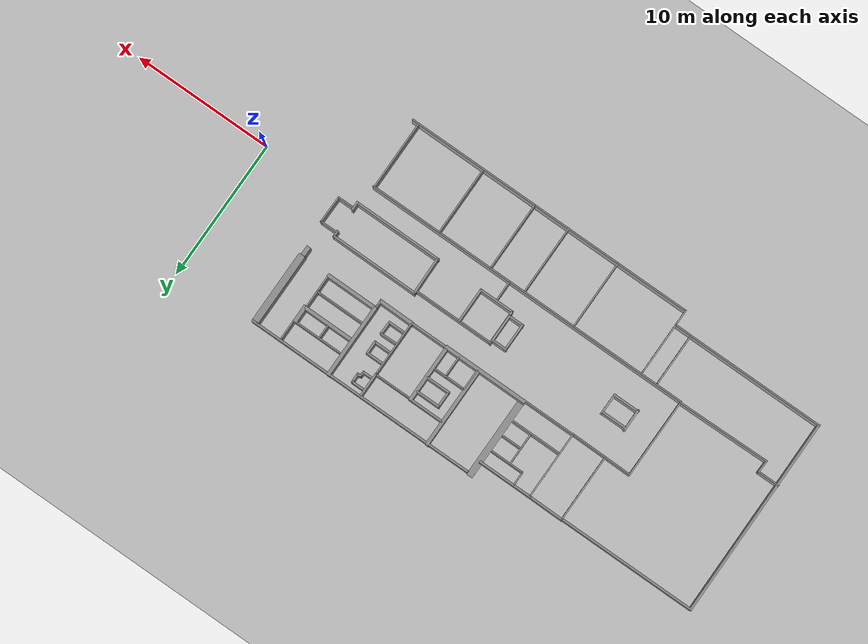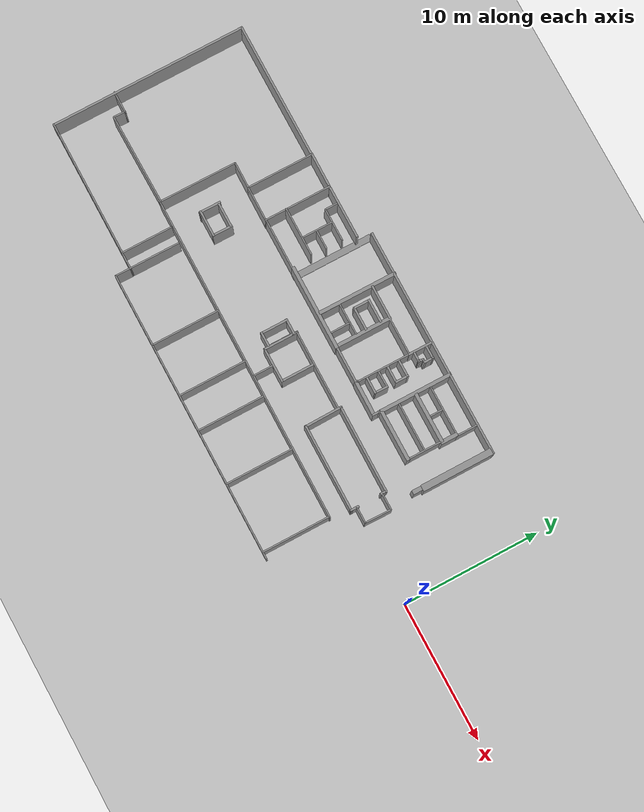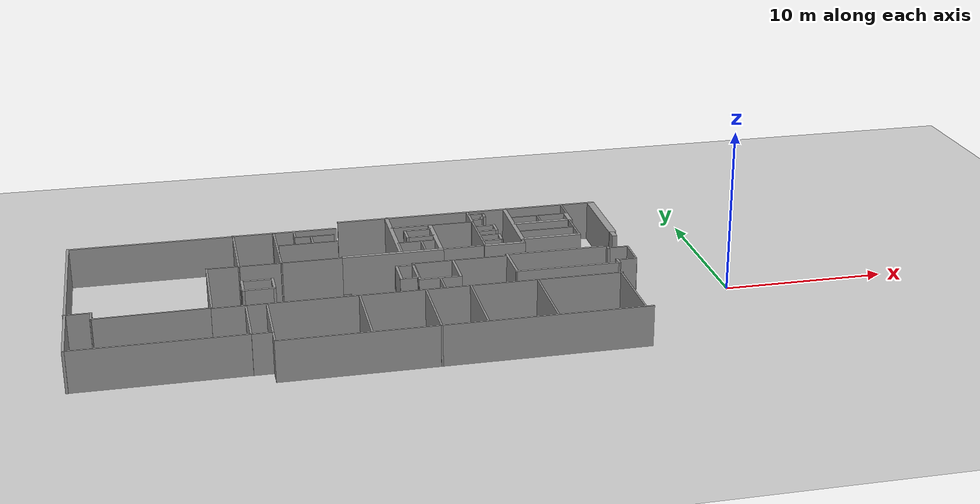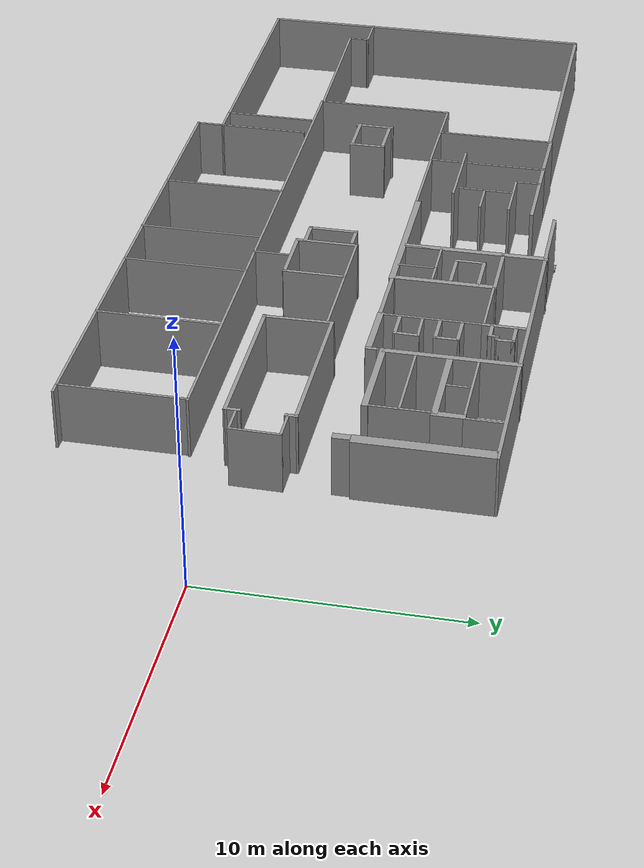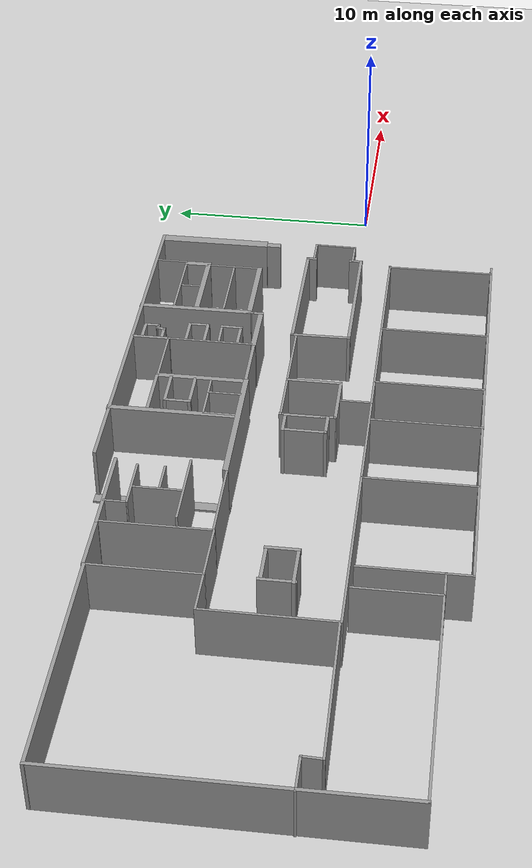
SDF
<sdf version="1.7">
 <world name="default">
  <model name="ground_plane">
   <static>1</static>
   <link name="link">
    <collision name="collision">
     <geometry><plane><normal>0 0 1</normal><size>100 100</size></plane></geometry>
     <surface>
      <contact><collide_bitmask>65535</collide_bitmask></contact>
      <friction><ode><mu>100</mu><mu2>50</mu2></ode></friction>
     </surface>
    </collision>
    <visual name="visual">
     <cast_shadows>0</cast_shadows>
     <geometry><plane><normal>0 0 1</normal><size>100 100</size></plane></geometry>
     <material>
      <script><uri>file://media/materials/scripts/gazebo.material</uri><name>Gazebo/Grey</name></script>
     </material>
    </visual>
   </link>
  </model>
  <model name="6OG">
   <pose>-19.646 1.54049 0 0 -0 0</pose>
   <link name="Wall_0">
    <collision name="Wall_0_Collision">
     <geometry><box><size>14.3933 0.15 2.5</size></box></geometry>
     <pose>0 0 1.25 0 -0 0</pose>
    </collision>
    <visual name="Wall_0_Visual">
     <pose>0 0 1.25 0 -0 0</pose>
     <geometry><box><size>14.3933 0.15 2.5</size></box></geometry>
     <material>
      <script><uri>file://media/materials/scripts/gazebo.material</uri><name>Gazebo/Grey</name></script>
      <ambient>1 1 1 1</ambient>
     </material>
     <meta><layer>0</layer></meta>
    </visual>
    <pose>-19.532 0.02801 0 0 -0 1.57248</pose>
   </link>
   <link name="Wall_101">
    <collision name="Wall_101_Collision">
     <geometry><box><size>16.78 0.15 2.5</size></box></geometry>
     <pose>0 0 1.25 0 -0 0</pose>
    </collision>
    <visual name="Wall_101_Visual">
     <pose>0 0 1.25 0 -0 0</pose>
     <geometry><box><size>16.78 0.15 2.5</size></box></geometry>
     <material>
      <script><uri>file://media/materials/scripts/gazebo.material</uri><name>Gazebo/Grey</name></script>
      <ambient>1 1 1 1</ambient>
     </material>
     <meta><layer>0</layer></meta>
    </visual>
    <pose>5.43225 8.13998 0 0 -0 0</pose>
   </link>
   <link name="Wall_103">
    <collision name="Wall_103_Collision">
     <geometry><box><size>1.499 0.101 2.5</size></box></geometry>
     <pose>0 0 1.25 0 -0 0</pose>
    </collision>
    <visual name="Wall_103_Visual">
     <pose>0 0 1.25 0 -0 0</pose>
     <geometry><box><size>1.499 0.101 2.5</size></box></geometry>
     <material>
      <script><uri>file://media/materials/scripts/gazebo.material</uri><name>Gazebo/Grey</name></script>
      <ambient>1 1 1 1</ambient>
     </material>
     <meta><layer>0</layer></meta>
    </visual>
    <pose>11.6267 7.34293 0 0 -0 -1.5708</pose>
   </link>
   <link name="Wall_105">
    <collision name="Wall_105_Collision">
     <geometry><box><size>5.298 0.25 2.5</size></box></geometry>
     <pose>0 0 1.25 0 -0 0</pose>
    </collision>
    <visual name="Wall_105_Visual">
     <pose>0 0 1.25 0 -0 0</pose>
     <geometry><box><size>5.298 0.25 2.5</size></box></geometry>
     <material>
      <script><uri>file://media/materials/scripts/gazebo.material</uri><name>Gazebo/Grey</name></script>
      <ambient>1 1 1 1</ambient>
     </material>
     <meta><layer>0</layer></meta>
    </visual>
    <pose>7.8518 5.58599 0 0 -0 -1.5708</pose>
   </link>
   <link name="Wall_107">
    <collision name="Wall_107_Collision">
     <geometry><box><size>3.499 0.101 2.5</size></box></geometry>
     <pose>0 0 1.25 0 -0 0</pose>
    </collision>
    <visual name="Wall_107_Visual">
     <pose>0 0 1.25 0 -0 0</pose>
     <geometry><box><size>3.499 0.101 2.5</size></box></geometry>
     <material>
      <script><uri>file://media/materials/scripts/gazebo.material</uri><name>Gazebo/Grey</name></script>
      <ambient>1 1 1 1</ambient>
     </material>
     <meta><layer>0</layer></meta>
    </visual>
    <pose>9.72876 4.26198 0 0 -0 0</pose>
   </link>
   <link name="Wall_109">
    <collision name="Wall_109_Collision">
     <geometry><box><size>3.649 0.25 2.5</size></box></geometry>
     <pose>0 0 1.25 0 -0 0</pose>
    </collision>
    <visual name="Wall_109_Visual">
     <pose>0 0 1.25 0 -0 0</pose>
     <geometry><box><size>3.649 0.25 2.5</size></box></geometry>
     <material>
      <script><uri>file://media/materials/scripts/gazebo.material</uri><name>Gazebo/Grey</name></script>
      <ambient>1 1 1 1</ambient>
     </material>
     <meta><layer>0</layer></meta>
    </visual>
    <pose>9.72899 5.54446 0 0 -0 0</pose>
   </link>
   <link name="Wall_11">
    <collision name="Wall_11_Collision">
     <geometry><box><size>3.69973 0.101 2.5</size></box></geometry>
     <pose>0 0 1.25 0 -0 0</pose>
    </collision>
    <visual name="Wall_11_Visual">
     <pose>0 0 1.25 0 -0 0</pose>
     <geometry><box><size>3.69973 0.101 2.5</size></box></geometry>
     <material>
      <script><uri>file://media/materials/scripts/gazebo.material</uri><name>Gazebo/Grey</name></script>
      <ambient>1 1 1 1</ambient>
     </material>
     <meta><layer>0</layer></meta>
    </visual>
    <pose>-9.6 -5.23449 0 0 -0 -1.5708</pose>
   </link>
   <link name="Wall_111">
    <collision name="Wall_111_Collision">
     <geometry><box><size>3.45 0.101 2.5</size></box></geometry>
     <pose>0 0 1.25 0 -0 0</pose>
    </collision>
    <visual name="Wall_111_Visual">
     <pose>0 0 1.25 0 -0 0</pose>
     <geometry><box><size>3.45 0.101 2.5</size></box></geometry>
     <material>
      <script><uri>file://media/materials/scripts/gazebo.material</uri><name>Gazebo/Grey</name></script>
      <ambient>1 1 1 1</ambient>
     </material>
     <meta><layer>0</layer></meta>
    </visual>
    <pose>9.68069 6.62743 0 0 -0 0</pose>
   </link>
   <link name="Wall_113">
    <collision name="Wall_113_Collision">
     <geometry><box><size>5.748 0.25 2.5</size></box></geometry>
     <pose>0 0 1.25 0 -0 0</pose>
    </collision>
    <visual name="Wall_113_Visual">
     <pose>0 0 1.25 0 -0 0</pose>
     <geometry><box><size>5.748 0.25 2.5</size></box></geometry>
     <material>
      <script><uri>file://media/materials/scripts/gazebo.material</uri><name>Gazebo/Grey</name></script>
      <ambient>1 1 1 1</ambient>
     </material>
     <meta><layer>0</layer></meta>
    </visual>
    <pose>0.173159 5.37915 0 0 -0 -1.5708</pose>
   </link>
   <link name="Wall_115">
    <collision name="Wall_115_Collision">
     <geometry><box><size>2.5 0.15 2.5</size></box></geometry>
     <pose>0 0 1.25 0 -0 0</pose>
    </collision>
    <visual name="Wall_115_Visual">
     <pose>0 0 1.25 0 -0 0</pose>
     <geometry><box><size>2.5 0.15 2.5</size></box></geometry>
     <material>
      <script><uri>file://media/materials/scripts/gazebo.material</uri><name>Gazebo/Grey</name></script>
      <ambient>1 1 1 1</ambient>
     </material>
     <meta><layer>0</layer></meta>
    </visual>
    <pose>1.43898 6.4647 0 0 -0 3.14159</pose>
   </link>
   <link name="Wall_119">
    <collision name="Wall_119_Collision">
     <geometry><box><size>3.862 0.101 2.5</size></box></geometry>
     <pose>0 0 1.25 0 -0 0</pose>
    </collision>
    <visual name="Wall_119_Visual">
     <pose>0 0 1.25 0 -0 0</pose>
     <geometry><box><size>3.862 0.101 2.5</size></box></geometry>
     <material>
      <script><uri>file://media/materials/scripts/gazebo.material</uri><name>Gazebo/Grey</name></script>
      <ambient>1 1 1 1</ambient>
     </material>
     <meta><layer>0</layer></meta>
    </visual>
    <pose>5.39162 4.44752 0 0 -0 -1.5708</pose>
   </link>
   <link name="Wall_121">
    <collision name="Wall_121_Collision">
     <geometry><box><size>2.749 0.101 2.5</size></box></geometry>
     <pose>0 0 1.25 0 -0 0</pose>
    </collision>
    <visual name="Wall_121_Visual">
     <pose>0 0 1.25 0 -0 0</pose>
     <geometry><box><size>2.749 0.101 2.5</size></box></geometry>
     <material>
      <script><uri>file://media/materials/scripts/gazebo.material</uri><name>Gazebo/Grey</name></script>
      <ambient>1 1 1 1</ambient>
     </material>
     <meta><layer>0</layer></meta>
    </visual>
    <pose>4.07012 6.4357 0 0 -0 3.14159</pose>
   </link>
   <link name="Wall_123">
    <collision name="Wall_123_Collision">
     <geometry><box><size>1.75 0.15 2.5</size></box></geometry>
     <pose>0 0 1.25 0 -0 0</pose>
    </collision>
    <visual name="Wall_123_Visual">
     <pose>0 0 1.25 0 -0 0</pose>
     <geometry><box><size>1.75 0.15 2.5</size></box></geometry>
     <material>
      <script><uri>file://media/materials/scripts/gazebo.material</uri><name>Gazebo/Grey</name></script>
      <ambient>1 1 1 1</ambient>
     </material>
     <meta><layer>0</layer></meta>
    </visual>
    <pose>5.39462 7.2357 0 0 -0 -1.5708</pose>
   </link>
   <link name="Wall_125">
    <collision name="Wall_125_Collision">
     <geometry><box><size>1.75 0.15 2.5</size></box></geometry>
     <pose>0 0 1.25 0 -0 0</pose>
    </collision>
    <visual name="Wall_125_Visual">
     <pose>0 0 1.25 0 -0 0</pose>
     <geometry><box><size>1.75 0.15 2.5</size></box></geometry>
     <material>
      <script><uri>file://media/materials/scripts/gazebo.material</uri><name>Gazebo/Grey</name></script>
      <ambient>1 1 1 1</ambient>
     </material>
     <meta><layer>0</layer></meta>
    </visual>
    <pose>1.7622 4.71178 0 0 -0 0</pose>
   </link>
   <link name="Wall_127">
    <collision name="Wall_127_Collision">
     <geometry><box><size>1.25 0.15 2.5</size></box></geometry>
     <pose>0 0 1.25 0 -0 0</pose>
    </collision>
    <visual name="Wall_127_Visual">
     <pose>0 0 1.25 0 -0 0</pose>
     <geometry><box><size>1.25 0.15 2.5</size></box></geometry>
     <material>
      <script><uri>file://media/materials/scripts/gazebo.material</uri><name>Gazebo/Grey</name></script>
      <ambient>1 1 1 1</ambient>
     </material>
     <meta><layer>0</layer></meta>
    </visual>
    <pose>0.962202 5.26178 0 0 -0 1.5708</pose>
   </link>
   <link name="Wall_128">
    <collision name="Wall_128_Collision">
     <geometry><box><size>1.75 0.15 2.5</size></box></geometry>
     <pose>0 0 1.25 0 -0 0</pose>
    </collision>
    <visual name="Wall_128_Visual">
     <pose>0 0 1.25 0 -0 0</pose>
     <geometry><box><size>1.75 0.15 2.5</size></box></geometry>
     <material>
      <script><uri>file://media/materials/scripts/gazebo.material</uri><name>Gazebo/Grey</name></script>
      <ambient>1 1 1 1</ambient>
     </material>
     <meta><layer>0</layer></meta>
    </visual>
    <pose>1.7622 5.81179 0 0 -0 0</pose>
   </link>
   <link name="Wall_13">
    <collision name="Wall_13_Collision">
     <geometry><box><size>9.9766 0.101 2.5</size></box></geometry>
     <pose>0 0 1.25 0 -0 0</pose>
    </collision>
    <visual name="Wall_13_Visual">
     <pose>0 0 1.25 0 -0 0</pose>
     <geometry><box><size>9.9766 0.101 2.5</size></box></geometry>
     <material>
      <script><uri>file://media/materials/scripts/gazebo.material</uri><name>Gazebo/Grey</name></script>
      <ambient>1 1 1 1</ambient>
     </material>
     <meta><layer>0</layer></meta>
    </visual>
    <pose>-14.5815 -7.09349 0 0 -0 0</pose>
   </link>
   <link name="Wall_130">
    <collision name="Wall_130_Collision">
     <geometry><box><size>1.25 0.15 2.5</size></box></geometry>
     <pose>0 0 1.25 0 -0 0</pose>
    </collision>
    <visual name="Wall_130_Visual">
     <pose>0 0 1.25 0 -0 0</pose>
     <geometry><box><size>1.25 0.15 2.5</size></box></geometry>
     <material>
      <script><uri>file://media/materials/scripts/gazebo.material</uri><name>Gazebo/Grey</name></script>
      <ambient>1 1 1 1</ambient>
     </material>
     <meta><layer>0</layer></meta>
    </visual>
    <pose>6.03678 3.22838 0 0 -0 0</pose>
   </link>
   <link name="Wall_131">
    <collision name="Wall_131_Collision">
     <geometry><box><size>1.02052 0.15 2.5</size></box></geometry>
     <pose>0 0 1.25 0 -0 0</pose>
    </collision>
    <visual name="Wall_131_Visual">
     <pose>0 0 1.25 0 -0 0</pose>
     <geometry><box><size>1.02052 0.15 2.5</size></box></geometry>
     <material>
      <script><uri>file://media/materials/scripts/gazebo.material</uri><name>Gazebo/Grey</name></script>
      <ambient>1 1 1 1</ambient>
     </material>
     <meta><layer>0</layer></meta>
    </visual>
    <pose>6.59714 3.66351 0 0 -0 1.54699</pose>
   </link>
   <link name="Wall_133">
    <collision name="Wall_133_Collision">
     <geometry><box><size>1.2207 0.12 2.5</size></box></geometry>
     <pose>0 0 1.25 0 -0 0</pose>
    </collision>
    <visual name="Wall_133_Visual">
     <pose>0 0 1.25 0 -0 0</pose>
     <geometry><box><size>1.2207 0.12 2.5</size></box></geometry>
     <material>
      <script><uri>file://media/materials/scripts/gazebo.material</uri><name>Gazebo/Grey</name></script>
      <ambient>1 1 1 1</ambient>
     </material>
     <meta><layer>0</layer></meta>
    </visual>
    <pose>6.05725 4.10886 0 0 -0 -3.12286</pose>
   </link>
   <link name="Wall_135">
    <collision name="Wall_135_Collision">
     <geometry><box><size>1.25 0.15 2.5</size></box></geometry>
     <pose>0 0 1.25 0 -0 0</pose>
    </collision>
    <visual name="Wall_135_Visual">
     <pose>0 0 1.25 0 -0 0</pose>
     <geometry><box><size>1.25 0.15 2.5</size></box></geometry>
     <material>
      <script><uri>file://media/materials/scripts/gazebo.material</uri><name>Gazebo/Grey</name></script>
      <ambient>1 1 1 1</ambient>
     </material>
     <meta><layer>0</layer></meta>
    </visual>
    <pose>6.06618 4.77835 0 0 -0 0</pose>
   </link>
   <link name="Wall_136">
    <collision name="Wall_136_Collision">
     <geometry><box><size>1 0.15 2.5</size></box></geometry>
     <pose>0 0 1.25 0 -0 0</pose>
    </collision>
    <visual name="Wall_136_Visual">
     <pose>0 0 1.25 0 -0 0</pose>
     <geometry><box><size>1 0.15 2.5</size></box></geometry>
     <material>
      <script><uri>file://media/materials/scripts/gazebo.material</uri><name>Gazebo/Grey</name></script>
      <ambient>1 1 1 1</ambient>
     </material>
     <meta><layer>0</layer></meta>
    </visual>
    <pose>6.61618 5.20335 0 0 -0 1.5708</pose>
   </link>
   <link name="Wall_137">
    <collision name="Wall_137_Collision">
     <geometry><box><size>1.25 0.15 2.5</size></box></geometry>
     <pose>0 0 1.25 0 -0 0</pose>
    </collision>
    <visual name="Wall_137_Visual">
     <pose>0 0 1.25 0 -0 0</pose>
     <geometry><box><size>1.25 0.15 2.5</size></box></geometry>
     <material>
      <script><uri>file://media/materials/scripts/gazebo.material</uri><name>Gazebo/Grey</name></script>
      <ambient>1 1 1 1</ambient>
     </material>
     <meta><layer>0</layer></meta>
    </visual>
    <pose>6.06618 5.62835 0 0 -0 3.14159</pose>
   </link>
   <link name="Wall_139">
    <collision name="Wall_139_Collision">
     <geometry><box><size>1 0.15 2.5</size></box></geometry>
     <pose>0 0 1.25 0 -0 0</pose>
    </collision>
    <visual name="Wall_139_Visual">
     <pose>0 0 1.25 0 -0 0</pose>
     <geometry><box><size>1 0.15 2.5</size></box></geometry>
     <material>
      <script><uri>file://media/materials/scripts/gazebo.material</uri><name>Gazebo/Grey</name></script>
      <ambient>1 1 1 1</ambient>
     </material>
     <meta><layer>0</layer></meta>
    </visual>
    <pose>5.91257 7.67733 0 0 -0 0</pose>
   </link>
   <link name="Wall_140">
    <collision name="Wall_140_Collision">
     <geometry><box><size>0.75 0.15 2.5</size></box></geometry>
     <pose>0 0 1.25 0 -0 0</pose>
    </collision>
    <visual name="Wall_140_Visual">
     <pose>0 0 1.25 0 -0 0</pose>
     <geometry><box><size>0.75 0.15 2.5</size></box></geometry>
     <material>
      <script><uri>file://media/materials/scripts/gazebo.material</uri><name>Gazebo/Grey</name></script>
      <ambient>1 1 1 1</ambient>
     </material>
     <meta><layer>0</layer></meta>
    </visual>
    <pose>6.33757 7.37733 0 0 -0 -1.5708</pose>
   </link>
   <link name="Wall_142">
    <collision name="Wall_142_Collision">
     <geometry><box><size>0.25 0.15 2.5</size></box></geometry>
     <pose>0 0 1.25 0 -0 0</pose>
    </collision>
    <visual name="Wall_142_Visual">
     <pose>0 0 1.25 0 -0 0</pose>
     <geometry><box><size>0.25 0.15 2.5</size></box></geometry>
     <material>
      <script><uri>file://media/materials/scripts/gazebo.material</uri><name>Gazebo/Grey</name></script>
      <ambient>1 1 1 1</ambient>
     </material>
     <meta><layer>0</layer></meta>
    </visual>
    <pose>6.28757 7.07733 0 0 -0 3.14159</pose>
   </link>
   <link name="Wall_143">
    <collision name="Wall_143_Collision">
     <geometry><box><size>0.25 0.15 2.5</size></box></geometry>
     <pose>0 0 1.25 0 -0 0</pose>
    </collision>
    <visual name="Wall_143_Visual">
     <pose>0 0 1.25 0 -0 0</pose>
     <geometry><box><size>0.25 0.15 2.5</size></box></geometry>
     <material>
      <script><uri>file://media/materials/scripts/gazebo.material</uri><name>Gazebo/Grey</name></script>
      <ambient>1 1 1 1</ambient>
     </material>
     <meta><layer>0</layer></meta>
    </visual>
    <pose>6.18927 7.06439 0 0 -0 -2.87979</pose>
   </link>
   <link name="Wall_144">
    <collision name="Wall_144_Collision">
     <geometry><box><size>0.15 0.15 2.5</size></box></geometry>
     <pose>0 0 1.25 0 -0 0</pose>
    </collision>
    <visual name="Wall_144_Visual">
     <pose>0 0 1.25 0 -0 0</pose>
     <geometry><box><size>0.15 0.15 2.5</size></box></geometry>
     <material>
      <script><uri>file://media/materials/scripts/gazebo.material</uri><name>Gazebo/Grey</name></script>
      <ambient>1 1 1 1</ambient>
     </material>
     <meta><layer>0</layer></meta>
    </visual>
    <pose>6.14097 7.05145 0 0 -0 0</pose>
   </link>
   <link name="Wall_145">
    <collision name="Wall_145_Collision">
     <geometry><box><size>0.440985 0.15 2.5</size></box></geometry>
     <pose>0 0 1.25 0 -0 0</pose>
    </collision>
    <visual name="Wall_145_Visual">
     <pose>0 0 1.25 0 -0 0</pose>
     <geometry><box><size>0.440985 0.15 2.5</size></box></geometry>
     <material>
      <script><uri>file://media/materials/scripts/gazebo.material</uri><name>Gazebo/Grey</name></script>
      <ambient>1 1 1 1</ambient>
     </material>
     <meta><layer>0</layer></meta>
    </visual>
    <pose>6.10758 6.90984 0 0 -0 -1.80236</pose>
   </link>
   <link name="Wall_146">
    <collision name="Wall_146_Collision">
     <geometry><box><size>0.75 0.15 2.5</size></box></geometry>
     <pose>0 0 1.25 0 -0 0</pose>
    </collision>
    <visual name="Wall_146_Visual">
     <pose>0 0 1.25 0 -0 0</pose>
     <geometry><box><size>0.75 0.15 2.5</size></box></geometry>
     <material>
      <script><uri>file://media/materials/scripts/gazebo.material</uri><name>Gazebo/Grey</name></script>
      <ambient>1 1 1 1</ambient>
     </material>
     <meta><layer>0</layer></meta>
    </visual>
    <pose>5.79779 6.76823 0 0 -0 3.14159</pose>
   </link>
   <link name="Wall_148">
    <collision name="Wall_148_Collision">
     <geometry><box><size>1.969 0.15 2.5</size></box></geometry>
     <pose>0 0 1.25 0 -0 0</pose>
    </collision>
    <visual name="Wall_148_Visual">
     <pose>0 0 1.25 0 -0 0</pose>
     <geometry><box><size>1.969 0.15 2.5</size></box></geometry>
     <material>
      <script><uri>file://media/materials/scripts/gazebo.material</uri><name>Gazebo/Grey</name></script>
      <ambient>1 1 1 1</ambient>
     </material>
     <meta><layer>0</layer></meta>
    </visual>
    <pose>-8.69935 -1.20703 0 0 -0 0</pose>
   </link>
   <link name="Wall_15">
    <collision name="Wall_15_Collision">
     <geometry><box><size>6.71908 0.101 2.5</size></box></geometry>
     <pose>0 0 1.25 0 -0 0</pose>
    </collision>
    <visual name="Wall_15_Visual">
     <pose>0 0 1.25 0 -0 0</pose>
     <geometry><box><size>6.71908 0.101 2.5</size></box></geometry>
     <material>
      <script><uri>file://media/materials/scripts/gazebo.material</uri><name>Gazebo/Grey</name></script>
      <ambient>1 1 1 1</ambient>
     </material>
     <meta><layer>0</layer></meta>
    </visual>
    <pose>-14.8005 -3.27071 0 0 -0 0.014134</pose>
   </link>
   <link name="Wall_150">
    <collision name="Wall_150_Collision">
     <geometry><box><size>1.5 0.15 2.5</size></box></geometry>
     <pose>0 0 1.25 0 -0 0</pose>
    </collision>
    <visual name="Wall_150_Visual">
     <pose>0 0 1.25 0 -0 0</pose>
     <geometry><box><size>1.5 0.15 2.5</size></box></geometry>
     <material>
      <script><uri>file://media/materials/scripts/gazebo.material</uri><name>Gazebo/Grey</name></script>
      <ambient>1 1 1 1</ambient>
     </material>
     <meta><layer>0</layer></meta>
    </visual>
    <pose>-7.78346 -0.541704 0 0 -0 -1.5708</pose>
   </link>
   <link name="Wall_152">
    <collision name="Wall_152_Collision">
     <geometry><box><size>1.75 0.15 2.5</size></box></geometry>
     <pose>0 0 1.25 0 -0 0</pose>
    </collision>
    <visual name="Wall_152_Visual">
     <pose>0 0 1.25 0 -0 0</pose>
     <geometry><box><size>1.75 0.15 2.5</size></box></geometry>
     <material>
      <script><uri>file://media/materials/scripts/gazebo.material</uri><name>Gazebo/Grey</name></script>
      <ambient>1 1 1 1</ambient>
     </material>
     <meta><layer>0</layer></meta>
    </visual>
    <pose>-8.66902 0.111824 0 0 -0 3.14159</pose>
   </link>
   <link name="Wall_154">
    <collision name="Wall_154_Collision">
     <geometry><box><size>1.603 0.15 2.5</size></box></geometry>
     <pose>0 0 1.25 0 -0 0</pose>
    </collision>
    <visual name="Wall_154_Visual">
     <pose>0 0 1.25 0 -0 0</pose>
     <geometry><box><size>1.603 0.15 2.5</size></box></geometry>
     <material>
      <script><uri>file://media/materials/scripts/gazebo.material</uri><name>Gazebo/Grey</name></script>
      <ambient>1 1 1 1</ambient>
     </material>
     <meta><layer>0</layer></meta>
    </visual>
    <pose>-9.57798 -0.538337 0 0 -0 1.5708</pose>
   </link>
   <link name="Wall_158">
    <collision name="Wall_158_Collision">
     <geometry><box><size>2 0.15 2.5</size></box></geometry>
     <pose>0 0 1.25 0 -0 0</pose>
    </collision>
    <visual name="Wall_158_Visual">
     <pose>0 0 1.25 0 -0 0</pose>
     <geometry><box><size>2 0.15 2.5</size></box></geometry>
     <material>
      <script><uri>file://media/materials/scripts/gazebo.material</uri><name>Gazebo/Grey</name></script>
      <ambient>1 1 1 1</ambient>
     </material>
     <meta><layer>0</layer></meta>
    </visual>
    <pose>-0.439043 -0.537365 0 0 -0 -1.5708</pose>
   </link>
   <link name="Wall_162">
    <collision name="Wall_162_Collision">
     <geometry><box><size>1.161 0.15 2.5</size></box></geometry>
     <pose>0 0 1.25 0 -0 0</pose>
    </collision>
    <visual name="Wall_162_Visual">
     <pose>0 0 1.25 0 -0 0</pose>
     <geometry><box><size>1.161 0.15 2.5</size></box></geometry>
     <material>
      <script><uri>file://media/materials/scripts/gazebo.material</uri><name>Gazebo/Grey</name></script>
      <ambient>1 1 1 1</ambient>
     </material>
     <meta><layer>0</layer></meta>
    </visual>
    <pose>0.050798 0.386694 0 0 -0 3.14159</pose>
   </link>
   <link name="Wall_164">
    <collision name="Wall_164_Collision">
     <geometry><box><size>1.161 0.15 2.5</size></box></geometry>
     <pose>0 0 1.25 0 -0 0</pose>
    </collision>
    <visual name="Wall_164_Visual">
     <pose>0 0 1.25 0 -0 0</pose>
     <geometry><box><size>1.161 0.15 2.5</size></box></geometry>
     <material>
      <script><uri>file://media/materials/scripts/gazebo.material</uri><name>Gazebo/Grey</name></script>
      <ambient>1 1 1 1</ambient>
     </material>
     <meta><layer>0</layer></meta>
    </visual>
    <pose>0.05674 -1.47984 0 0 -0 0</pose>
   </link>
   <link name="Wall_166">
    <collision name="Wall_166_Collision">
     <geometry><box><size>2.01655 0.15 2.5</size></box></geometry>
     <pose>0 0 1.25 0 -0 0</pose>
    </collision>
    <visual name="Wall_166_Visual">
     <pose>0 0 1.25 0 -0 0</pose>
     <geometry><box><size>2.01655 0.15 2.5</size></box></geometry>
     <material>
      <script><uri>file://media/materials/scripts/gazebo.material</uri><name>Gazebo/Grey</name></script>
      <ambient>1 1 1 1</ambient>
     </material>
     <meta><layer>0</layer></meta>
    </visual>
    <pose>0.559269 -0.546575 0 0 -0 -1.56761</pose>
   </link>
   <link name="Wall_168">
    <collision name="Wall_168_Collision">
     <geometry><box><size>2.5 0.15 2.5</size></box></geometry>
     <pose>0 0 1.25 0 -0 0</pose>
    </collision>
    <visual name="Wall_168_Visual">
     <pose>0 0 1.25 0 -0 0</pose>
     <geometry><box><size>2.5 0.15 2.5</size></box></geometry>
     <material>
      <script><uri>file://media/materials/scripts/gazebo.material</uri><name>Gazebo/Grey</name></script>
      <ambient>1 1 1 1</ambient>
     </material>
     <meta><layer>0</layer></meta>
    </visual>
    <pose>0.592194 -0.572936 0 0 -0 -1.5708</pose>
   </link>
   <link name="Wall_17">
    <collision name="Wall_17_Collision">
     <geometry><box><size>0.933614 0.101 2.5</size></box></geometry>
     <pose>0 0 1.25 0 -0 0</pose>
    </collision>
    <visual name="Wall_17_Visual">
     <pose>0 0 1.25 0 -0 0</pose>
     <geometry><box><size>0.933614 0.101 2.5</size></box></geometry>
     <material>
      <script><uri>file://media/materials/scripts/gazebo.material</uri><name>Gazebo/Grey</name></script>
      <ambient>1 1 1 1</ambient>
     </material>
     <meta><layer>0</layer></meta>
    </visual>
    <pose>-18.094 -2.90099 0 0 -0 -1.60919</pose>
   </link>
   <link name="Wall_170">
    <collision name="Wall_170_Collision">
     <geometry><box><size>2.55 0.15 2.5</size></box></geometry>
     <pose>0 0 1.25 0 -0 0</pose>
    </collision>
    <visual name="Wall_170_Visual">
     <pose>0 0 1.25 0 -0 0</pose>
     <geometry><box><size>2.55 0.15 2.5</size></box></geometry>
     <material>
      <script><uri>file://media/materials/scripts/gazebo.material</uri><name>Gazebo/Grey</name></script>
      <ambient>1 1 1 1</ambient>
     </material>
     <meta><layer>0</layer></meta>
    </visual>
    <pose>1.80652 -1.8029 0 0 -0 3.14159</pose>
   </link>
   <link name="Wall_172">
    <collision name="Wall_172_Collision">
     <geometry><box><size>5.783 0.101 2.5</size></box></geometry>
     <pose>0 0 1.25 0 -0 0</pose>
    </collision>
    <visual name="Wall_172_Visual">
     <pose>0 0 1.25 0 -0 0</pose>
     <geometry><box><size>5.783 0.101 2.5</size></box></geometry>
     <material>
      <script><uri>file://media/materials/scripts/gazebo.material</uri><name>Gazebo/Grey</name></script>
      <ambient>1 1 1 1</ambient>
     </material>
     <meta><layer>0</layer></meta>
    </visual>
    <pose>3.4155 0.59951 0 0 -0 0</pose>
   </link>
   <link name="Wall_174">
    <collision name="Wall_174_Collision">
     <geometry><box><size>2.5 0.15 2.5</size></box></geometry>
     <pose>0 0 1.25 0 -0 0</pose>
    </collision>
    <visual name="Wall_174_Visual">
     <pose>0 0 1.25 0 -0 0</pose>
     <geometry><box><size>2.5 0.15 2.5</size></box></geometry>
     <material>
      <script><uri>file://media/materials/scripts/gazebo.material</uri><name>Gazebo/Grey</name></script>
      <ambient>1 1 1 1</ambient>
     </material>
     <meta><layer>0</layer></meta>
    </visual>
    <pose>3.00862 -0.606322 0 0 -0 -1.5708</pose>
   </link>
   <link name="Wall_176">
    <collision name="Wall_176_Collision">
     <geometry><box><size>1.45029 0.101 2.5</size></box></geometry>
     <pose>0 0 1.25 0 -0 0</pose>
    </collision>
    <visual name="Wall_176_Visual">
     <pose>0 0 1.25 0 -0 0</pose>
     <geometry><box><size>1.45029 0.101 2.5</size></box></geometry>
     <material>
      <script><uri>file://media/materials/scripts/gazebo.material</uri><name>Gazebo/Grey</name></script>
      <ambient>1 1 1 1</ambient>
     </material>
     <meta><layer>0</layer></meta>
    </visual>
    <pose>1.813 -2.58949 0 0 -0 -1.5708</pose>
   </link>
   <link name="Wall_180">
    <collision name="Wall_180_Collision">
     <geometry><box><size>6.416 0.15 2.5</size></box></geometry>
     <pose>0 0 1.25 0 -0 0</pose>
    </collision>
    <visual name="Wall_180_Visual">
     <pose>0 0 1.25 0 -0 0</pose>
     <geometry><box><size>6.416 0.15 2.5</size></box></geometry>
     <material>
      <script><uri>file://media/materials/scripts/gazebo.material</uri><name>Gazebo/Grey</name></script>
      <ambient>1 1 1 1</ambient>
     </material>
     <meta><layer>0</layer></meta>
    </visual>
    <pose>9.50086 0.772969 0 0 -0 -0.003695</pose>
   </link>
   <link name="Wall_182">
    <collision name="Wall_182_Collision">
     <geometry><box><size>0.5 0.15 2.5</size></box></geometry>
     <pose>0 0 1.25 0 -0 0</pose>
    </collision>
    <visual name="Wall_182_Visual">
     <pose>0 0 1.25 0 -0 0</pose>
     <geometry><box><size>0.5 0.15 2.5</size></box></geometry>
     <material>
      <script><uri>file://media/materials/scripts/gazebo.material</uri><name>Gazebo/Grey</name></script>
      <ambient>1 1 1 1</ambient>
     </material>
     <meta><layer>0</layer></meta>
    </visual>
    <pose>12.6338 0.586392 0 0 -0 -1.5708</pose>
   </link>
   <link name="Wall_184">
    <collision name="Wall_184_Collision">
     <geometry><box><size>2.777 0.15 2.5</size></box></geometry>
     <pose>0 0 1.25 0 -0 0</pose>
    </collision>
    <visual name="Wall_184_Visual">
     <pose>0 0 1.25 0 -0 0</pose>
     <geometry><box><size>2.777 0.15 2.5</size></box></geometry>
     <material>
      <script><uri>file://media/materials/scripts/gazebo.material</uri><name>Gazebo/Grey</name></script>
      <ambient>1 1 1 1</ambient>
     </material>
     <meta><layer>0</layer></meta>
    </visual>
    <pose>6.38715 -0.518446 0 0 -0 1.58642</pose>
   </link>
   <link name="Wall_186">
    <collision name="Wall_186_Collision">
     <geometry><box><size>6.41685 0.15 2.5</size></box></geometry>
     <pose>0 0 1.25 0 -0 0</pose>
    </collision>
    <visual name="Wall_186_Visual">
     <pose>0 0 1.25 0 -0 0</pose>
     <geometry><box><size>6.41685 0.15 2.5</size></box></geometry>
     <material>
      <script><uri>file://media/materials/scripts/gazebo.material</uri><name>Gazebo/Grey</name></script>
      <ambient>1 1 1 1</ambient>
     </material>
     <meta><layer>0</layer></meta>
    </visual>
    <pose>9.52058 -1.83422 0 0 -0 3.14087</pose>
   </link>
   <link name="Wall_19">
    <collision name="Wall_19_Collision">
     <geometry><box><size>1.618 0.101 2.5</size></box></geometry>
     <pose>0 0 1.25 0 -0 0</pose>
    </collision>
    <visual name="Wall_19_Visual">
     <pose>0 0 1.25 0 -0 0</pose>
     <geometry><box><size>1.618 0.101 2.5</size></box></geometry>
     <material>
      <script><uri>file://media/materials/scripts/gazebo.material</uri><name>Gazebo/Grey</name></script>
      <ambient>1 1 1 1</ambient>
     </material>
     <meta><layer>0</layer></meta>
    </visual>
    <pose>-18.837 -2.48449 0 0 -0 3.14159</pose>
   </link>
   <link name="Wall_190">
    <collision name="Wall_190_Collision">
     <geometry><box><size>0.65 0.15 2.5</size></box></geometry>
     <pose>0 0 1.25 0 -0 0</pose>
    </collision>
    <visual name="Wall_190_Visual">
     <pose>0 0 1.25 0 -0 0</pose>
     <geometry><box><size>0.65 0.15 2.5</size></box></geometry>
     <material>
      <script><uri>file://media/materials/scripts/gazebo.material</uri><name>Gazebo/Grey</name></script>
      <ambient>1 1 1 1</ambient>
     </material>
     <meta><layer>0</layer></meta>
    </visual>
    <pose>12.654 -1.58649 0 0 -0 -1.5708</pose>
   </link>
   <link name="Wall_196">
    <collision name="Wall_196_Collision">
     <geometry><box><size>1.23569 0.101 2.5</size></box></geometry>
     <pose>0 0 1.25 0 -0 0</pose>
    </collision>
    <visual name="Wall_196_Visual">
     <pose>0 0 1.25 0 -0 0</pose>
     <geometry><box><size>1.23569 0.101 2.5</size></box></geometry>
     <material>
      <script><uri>file://media/materials/scripts/gazebo.material</uri><name>Gazebo/Grey</name></script>
      <ambient>1 1 1 1</ambient>
     </material>
     <meta><layer>0</layer></meta>
    </visual>
    <pose>13.2608 0.46751 0 0 -0 0</pose>
   </link>
   <link name="Wall_2">
    <collision name="Wall_2_Collision">
     <geometry><box><size>10.0948 0.15 2.5</size></box></geometry>
     <pose>0 0 1.25 0 -0 0</pose>
    </collision>
    <visual name="Wall_2_Visual">
     <pose>0 0 1.25 0 -0 0</pose>
     <geometry><box><size>10.0948 0.15 2.5</size></box></geometry>
     <material>
      <script><uri>file://media/materials/scripts/gazebo.material</uri><name>Gazebo/Grey</name></script>
      <ambient>1 1 1 1</ambient>
     </material>
     <meta><layer>0</layer></meta>
    </visual>
    <pose>-14.5715 7.14951 0 0 -0 3.14159</pose>
   </link>
   <link name="Wall_201">
    <collision name="Wall_201_Collision">
     <geometry><box><size>1.23569 0.101 2.5</size></box></geometry>
     <pose>0 0 1.25 0 -0 0</pose>
    </collision>
    <visual name="Wall_201_Visual">
     <pose>0 0 1.25 0 -0 0</pose>
     <geometry><box><size>1.23569 0.101 2.5</size></box></geometry>
     <material>
      <script><uri>file://media/materials/scripts/gazebo.material</uri><name>Gazebo/Grey</name></script>
      <ambient>1 1 1 1</ambient>
     </material>
     <meta><layer>0</layer></meta>
    </visual>
    <pose>13.2288 -1.42749 0 0 -0 0</pose>
   </link>
   <link name="Wall_203">
    <collision name="Wall_203_Collision">
     <geometry><box><size>1.99527 0.101 2.5</size></box></geometry>
     <pose>0 0 1.25 0 -0 0</pose>
    </collision>
    <visual name="Wall_203_Visual">
     <pose>0 0 1.25 0 -0 0</pose>
     <geometry><box><size>1.99527 0.101 2.5</size></box></geometry>
     <material>
      <script><uri>file://media/materials/scripts/gazebo.material</uri><name>Gazebo/Grey</name></script>
      <ambient>1 1 1 1</ambient>
     </material>
     <meta><layer>0</layer></meta>
    </visual>
    <pose>13.8305 -0.47999 0 0 -0 -1.58768</pose>
   </link>
   <link name="Wall_209">
    <collision name="Wall_209_Collision">
     <geometry><box><size>0.665 0.31 2.5</size></box></geometry>
     <pose>0 0 1.25 0 -0 0</pose>
    </collision>
    <visual name="Wall_209_Visual">
     <pose>0 0 1.25 0 -0 0</pose>
     <geometry><box><size>0.665 0.31 2.5</size></box></geometry>
     <material>
      <script><uri>file://media/materials/scripts/gazebo.material</uri><name>Gazebo/Grey</name></script>
      <ambient>1 1 1 1</ambient>
     </material>
     <meta><layer>0</layer></meta>
    </visual>
    <pose>13.5491 2.57417 0 0 -0 -1.5708</pose>
   </link>
   <link name="Wall_21">
    <collision name="Wall_21_Collision">
     <geometry><box><size>2.64714 0.15 2.5</size></box></geometry>
     <pose>0 0 1.25 0 -0 0</pose>
    </collision>
    <visual name="Wall_21_Visual">
     <pose>0 0 1.25 0 -0 0</pose>
     <geometry><box><size>2.64714 0.15 2.5</size></box></geometry>
     <material>
      <script><uri>file://media/materials/scripts/gazebo.material</uri><name>Gazebo/Grey</name></script>
      <ambient>1 1 1 1</ambient>
     </material>
     <meta><layer>0</layer></meta>
    </visual>
    <pose>-8.32148 7.17541 0 0 -0 3.1327</pose>
   </link>
   <link name="Wall_23">
    <collision name="Wall_23_Collision">
     <geometry><box><size>2.61265 0.101 2.5</size></box></geometry>
     <pose>0 0 1.25 0 -0 0</pose>
    </collision>
    <visual name="Wall_23_Visual">
     <pose>0 0 1.25 0 -0 0</pose>
     <geometry><box><size>2.61265 0.101 2.5</size></box></geometry>
     <material>
      <script><uri>file://media/materials/scripts/gazebo.material</uri><name>Gazebo/Grey</name></script>
      <ambient>1 1 1 1</ambient>
     </material>
     <meta><layer>0</layer></meta>
    </visual>
    <pose>-8.3155 2.34601 0 0 -0 -0.008356</pose>
   </link>
   <link name="Wall_24">
    <collision name="Wall_24_Collision">
     <geometry><box><size>4.92939 0.101 2.5</size></box></geometry>
     <pose>0 0 1.25 0 -0 0</pose>
    </collision>
    <visual name="Wall_24_Visual">
     <pose>0 0 1.25 0 -0 0</pose>
     <geometry><box><size>4.92939 0.101 2.5</size></box></geometry>
     <material>
      <script><uri>file://media/materials/scripts/gazebo.material</uri><name>Gazebo/Grey</name></script>
      <ambient>1 1 1 1</ambient>
     </material>
     <meta><layer>0</layer></meta>
    </visual>
    <pose>-7.06598 4.74991 0 0 -0 1.57369</pose>
   </link>
   <link name="Wall_26">
    <collision name="Wall_26_Collision">
     <geometry><box><size>1.22133 0.101 2.5</size></box></geometry>
     <pose>0 0 1.25 0 -0 0</pose>
    </collision>
    <visual name="Wall_26_Visual">
     <pose>0 0 1.25 0 -0 0</pose>
     <geometry><box><size>1.22133 0.101 2.5</size></box></geometry>
     <material>
      <script><uri>file://media/materials/scripts/gazebo.material</uri><name>Gazebo/Grey</name></script>
      <ambient>1 1 1 1</ambient>
     </material>
     <meta><layer>0</layer></meta>
    </visual>
    <pose>-8.9775 -7.10549 0 0 -0 0</pose>
   </link>
   <link name="Wall_27">
    <collision name="Wall_27_Collision">
     <geometry><box><size>3.7 0.101 2.5</size></box></geometry>
     <pose>0 0 1.25 0 -0 0</pose>
    </collision>
    <visual name="Wall_27_Visual">
     <pose>0 0 1.25 0 -0 0</pose>
     <geometry><box><size>3.7 0.101 2.5</size></box></geometry>
     <material>
      <script><uri>file://media/materials/scripts/gazebo.material</uri><name>Gazebo/Grey</name></script>
      <ambient>1 1 1 1</ambient>
     </material>
     <meta><layer>0</layer></meta>
    </visual>
    <pose>-8.417 -5.30549 0 0 -0 1.5708</pose>
   </link>
   <link name="Wall_31">
    <collision name="Wall_31_Collision">
     <geometry><box><size>23.999 0.101 2.5</size></box></geometry>
     <pose>0 0 1.25 0 -0 0</pose>
    </collision>
    <visual name="Wall_31_Visual">
     <pose>0 0 1.25 0 -0 0</pose>
     <geometry><box><size>23.999 0.101 2.5</size></box></geometry>
     <material>
      <script><uri>file://media/materials/scripts/gazebo.material</uri><name>Gazebo/Grey</name></script>
      <ambient>1 1 1 1</ambient>
     </material>
     <meta><layer>0</layer></meta>
    </visual>
    <pose>0.4585 -3.28671 0 0 -0 0</pose>
   </link>
   <link name="Wall_33">
    <collision name="Wall_33_Collision">
     <geometry><box><size>1.196 0.101 2.5</size></box></geometry>
     <pose>0 0 1.25 0 -0 0</pose>
    </collision>
    <visual name="Wall_33_Visual">
     <pose>0 0 1.25 0 -0 0</pose>
     <geometry><box><size>1.196 0.101 2.5</size></box></geometry>
     <material>
      <script><uri>file://media/materials/scripts/gazebo.material</uri><name>Gazebo/Grey</name></script>
      <ambient>1 1 1 1</ambient>
     </material>
     <meta><layer>0</layer></meta>
    </visual>
    <pose>-8.418 -7.65349 0 0 -0 1.56897</pose>
   </link>
   <link name="Wall_35">
    <collision name="Wall_35_Collision">
     <geometry><box><size>21.305 0.101 2.5</size></box></geometry>
     <pose>0 0 1.25 0 -0 0</pose>
    </collision>
    <visual name="Wall_35_Visual">
     <pose>0 0 1.25 0 -0 0</pose>
     <geometry><box><size>21.305 0.101 2.5</size></box></geometry>
     <material>
      <script><uri>file://media/materials/scripts/gazebo.material</uri><name>Gazebo/Grey</name></script>
      <ambient>1 1 1 1</ambient>
     </material>
     <meta><layer>0</layer></meta>
    </visual>
    <pose>2.1835 -8.20149 0 0 -0 3.14159</pose>
   </link>
   <link name="Wall_39">
    <collision name="Wall_39_Collision">
     <geometry><box><size>4.94992 0.101 2.5</size></box></geometry>
     <pose>0 0 1.25 0 -0 0</pose>
    </collision>
    <visual name="Wall_39_Visual">
     <pose>0 0 1.25 0 -0 0</pose>
     <geometry><box><size>4.94992 0.101 2.5</size></box></geometry>
     <material>
      <script><uri>file://media/materials/scripts/gazebo.material</uri><name>Gazebo/Grey</name></script>
      <ambient>1 1 1 1</ambient>
     </material>
     <meta><layer>0</layer></meta>
    </visual>
    <pose>-3.152 -5.74749 0 0 -0 -1.5708</pose>
   </link>
   <link name="Wall_41">
    <collision name="Wall_41_Collision">
     <geometry><box><size>4.94996 0.101 2.5</size></box></geometry>
     <pose>0 0 1.25 0 -0 0</pose>
    </collision>
    <visual name="Wall_41_Visual">
     <pose>0 0 1.25 0 -0 0</pose>
     <geometry><box><size>4.94996 0.101 2.5</size></box></geometry>
     <material>
      <script><uri>file://media/materials/scripts/gazebo.material</uri><name>Gazebo/Grey</name></script>
      <ambient>1 1 1 1</ambient>
     </material>
     <meta><layer>0</layer></meta>
    </visual>
    <pose>0.679001 -5.78849 0 0 -0 -1.5708</pose>
   </link>
   <link name="Wall_43">
    <collision name="Wall_43_Collision">
     <geometry><box><size>4.94992 0.101 2.5</size></box></geometry>
     <pose>0 0 1.25 0 -0 0</pose>
    </collision>
    <visual name="Wall_43_Visual">
     <pose>0 0 1.25 0 -0 0</pose>
     <geometry><box><size>4.94992 0.101 2.5</size></box></geometry>
     <material>
      <script><uri>file://media/materials/scripts/gazebo.material</uri><name>Gazebo/Grey</name></script>
      <ambient>1 1 1 1</ambient>
     </material>
     <meta><layer>0</layer></meta>
    </visual>
    <pose>3.313 -5.74749 0 0 -0 -1.5708</pose>
   </link>
   <link name="Wall_45">
    <collision name="Wall_45_Collision">
     <geometry><box><size>4.95044 0.101 2.5</size></box></geometry>
     <pose>0 0 1.25 0 -0 0</pose>
    </collision>
    <visual name="Wall_45_Visual">
     <pose>0 0 1.25 0 -0 0</pose>
     <geometry><box><size>4.95044 0.101 2.5</size></box></geometry>
     <material>
      <script><uri>file://media/materials/scripts/gazebo.material</uri><name>Gazebo/Grey</name></script>
      <ambient>1 1 1 1</ambient>
     </material>
     <meta><layer>0</layer></meta>
    </visual>
    <pose>7.294 -5.76749 0 0 -0 -1.5708</pose>
   </link>
   <link name="Wall_47">
    <collision name="Wall_47_Collision">
     <geometry><box><size>4.999 0.101 2.5</size></box></geometry>
     <pose>0 0 1.25 0 -0 0</pose>
    </collision>
    <visual name="Wall_47_Visual">
     <pose>0 0 1.25 0 -0 0</pose>
     <geometry><box><size>4.999 0.101 2.5</size></box></geometry>
     <material>
      <script><uri>file://media/materials/scripts/gazebo.material</uri><name>Gazebo/Grey</name></script>
      <ambient>1 1 1 1</ambient>
     </material>
     <meta><layer>0</layer></meta>
    </visual>
    <pose>12.3432 -5.75043 0 0 -0 -1.5708</pose>
   </link>
   <link name="Wall_49">
    <collision name="Wall_49_Collision">
     <geometry><box><size>3.749 0.101 2.5</size></box></geometry>
     <pose>0 0 1.25 0 -0 0</pose>
    </collision>
    <visual name="Wall_49_Visual">
     <pose>0 0 1.25 0 -0 0</pose>
     <geometry><box><size>3.749 0.101 2.5</size></box></geometry>
     <material>
      <script><uri>file://media/materials/scripts/gazebo.material</uri><name>Gazebo/Grey</name></script>
      <ambient>1 1 1 1</ambient>
     </material>
     <meta><layer>0</layer></meta>
    </visual>
    <pose>-5.2625 2.36251 0 0 -0 3.14159</pose>
   </link>
   <link name="Wall_5">
    <collision name="Wall_5_Collision">
     <geometry><box><size>4.92982 0.101 2.5</size></box></geometry>
     <pose>0 0 1.25 0 -0 0</pose>
    </collision>
    <visual name="Wall_5_Visual">
     <pose>0 0 1.25 0 -0 0</pose>
     <geometry><box><size>4.92982 0.101 2.5</size></box></geometry>
     <material>
      <script><uri>file://media/materials/scripts/gazebo.material</uri><name>Gazebo/Grey</name></script>
      <ambient>1 1 1 1</ambient>
     </material>
     <meta><layer>0</layer></meta>
    </visual>
    <pose>-9.571 4.77151 0 0 -0 1.57038</pose>
   </link>
   <link name="Wall_51">
    <collision name="Wall_51_Collision">
     <geometry><box><size>3.561 0.101 3</size></box></geometry>
     <pose>0 0 1.5 0 -0 0</pose>
    </collision>
    <visual name="Wall_51_Visual">
     <pose>0 0 1.5 0 -0 0</pose>
     <geometry><box><size>3.561 0.101 3</size></box></geometry>
     <material>
      <script><uri>file://media/materials/scripts/gazebo.material</uri><name>Gazebo/Grey</name></script>
      <ambient>1 1 1 1</ambient>
     </material>
     <meta><layer>0</layer></meta>
    </visual>
    <pose>-5.2515 3.86051 0 0 -0 3.14159</pose>
   </link>
   <link name="Wall_53">
    <collision name="Wall_53_Collision">
     <geometry><box><size>4 0.15 2.5</size></box></geometry>
     <pose>0 0 1.25 0 -0 0</pose>
    </collision>
    <visual name="Wall_53_Visual">
     <pose>0 0 1.25 0 -0 0</pose>
     <geometry><box><size>4 0.15 2.5</size></box></geometry>
     <material>
      <script><uri>file://media/materials/scripts/gazebo.material</uri><name>Gazebo/Grey</name></script>
      <ambient>1 1 1 1</ambient>
     </material>
     <meta><layer>0</layer></meta>
    </visual>
    <pose>-5.16848 7.16431 0 0 -0 3.14159</pose>
   </link>
   <link name="Wall_55">
    <collision name="Wall_55_Collision">
     <geometry><box><size>5.975 0.47 0.101</size></box></geometry>
     <pose>0 0 0.0505 0 -0 0</pose>
    </collision>
    <visual name="Wall_55_Visual">
     <pose>0 0 0.0505 0 -0 0</pose>
     <geometry><box><size>5.975 0.47 0.101</size></box></geometry>
     <material>
      <script><uri>file://media/materials/scripts/gazebo.material</uri><name>Gazebo/Grey</name></script>
      <ambient>1 1 1 1</ambient>
     </material>
     <meta><layer>0</layer></meta>
    </visual>
    <pose>-3.16167 5.27597 0 0 -0 -1.5708</pose>
   </link>
   <link name="Wall_57">
    <collision name="Wall_57_Collision">
     <geometry><box><size>2.23974 0.101 2.5</size></box></geometry>
     <pose>0 0 1.25 0 -0 0</pose>
    </collision>
    <visual name="Wall_57_Visual">
     <pose>0 0 1.25 0 -0 0</pose>
     <geometry><box><size>2.23974 0.101 2.5</size></box></geometry>
     <material>
      <script><uri>file://media/materials/scripts/gazebo.material</uri><name>Gazebo/Grey</name></script>
      <ambient>1 1 1 1</ambient>
     </material>
     <meta><layer>0</layer></meta>
    </visual>
    <pose>-4.85486 5.03351 0 0 -0 1.5708</pose>
   </link>
   <link name="Wall_59">
    <collision name="Wall_59_Collision">
     <geometry><box><size>1.389 0.101 2.5</size></box></geometry>
     <pose>0 0 1.25 0 -0 0</pose>
    </collision>
    <visual name="Wall_59_Visual">
     <pose>0 0 1.25 0 -0 0</pose>
     <geometry><box><size>1.389 0.101 2.5</size></box></geometry>
     <material>
      <script><uri>file://media/materials/scripts/gazebo.material</uri><name>Gazebo/Grey</name></script>
      <ambient>1 1 1 1</ambient>
     </material>
     <meta><layer>0</layer></meta>
    </visual>
    <pose>-4.12445 4.98811 0 0 -0 3.14159</pose>
   </link>
   <link name="Wall_61">
    <collision name="Wall_61_Collision">
     <geometry><box><size>0.988 0.101 2.5</size></box></geometry>
     <pose>0 0 1.25 0 -0 0</pose>
    </collision>
    <visual name="Wall_61_Visual">
     <pose>0 0 1.25 0 -0 0</pose>
     <geometry><box><size>0.988 0.101 2.5</size></box></geometry>
     <material>
      <script><uri>file://media/materials/scripts/gazebo.material</uri><name>Gazebo/Grey</name></script>
      <ambient>1 1 1 1</ambient>
     </material>
     <meta><layer>0</layer></meta>
    </visual>
    <pose>-5.81991 6.68499 0 0 -0 1.5708</pose>
   </link>
   <link name="Wall_63">
    <collision name="Wall_63_Collision">
     <geometry><box><size>2.424 0.101 2.5</size></box></geometry>
     <pose>0 0 1.25 0 -0 0</pose>
    </collision>
    <visual name="Wall_63_Visual">
     <pose>0 0 1.25 0 -0 0</pose>
     <geometry><box><size>2.424 0.101 2.5</size></box></geometry>
     <material>
      <script><uri>file://media/materials/scripts/gazebo.material</uri><name>Gazebo/Grey</name></script>
      <ambient>1 1 1 1</ambient>
     </material>
     <meta><layer>0</layer></meta>
    </visual>
    <pose>-4.64195 6.17942 0 0 -0 3.14159</pose>
   </link>
   <link name="Wall_67">
    <collision name="Wall_67_Collision">
     <geometry><box><size>6.197 0.25 2.5</size></box></geometry>
     <pose>0 0 1.25 0 -0 0</pose>
    </collision>
    <visual name="Wall_67_Visual">
     <pose>0 0 1.25 0 -0 0</pose>
     <geometry><box><size>6.197 0.25 2.5</size></box></geometry>
     <material>
      <script><uri>file://media/materials/scripts/gazebo.material</uri><name>Gazebo/Grey</name></script>
      <ambient>1 1 1 1</ambient>
     </material>
     <meta><layer>0</layer></meta>
    </visual>
    <pose>-0.310753 2.43521 0 0 -0 3.14159</pose>
   </link>
   <link name="Wall_69">
    <collision name="Wall_69_Collision">
     <geometry><box><size>2.613 0.15 2.5</size></box></geometry>
     <pose>0 0 1.25 0 -0 0</pose>
    </collision>
    <visual name="Wall_69_Visual">
     <pose>0 0 1.25 0 -0 0</pose>
     <geometry><box><size>2.613 0.15 2.5</size></box></geometry>
     <material>
      <script><uri>file://media/materials/scripts/gazebo.material</uri><name>Gazebo/Grey</name></script>
      <ambient>1 1 1 1</ambient>
     </material>
     <meta><layer>0</layer></meta>
    </visual>
    <pose>4.08122 2.45003 0 0 -0 0</pose>
   </link>
   <link name="Wall_7">
    <collision name="Wall_7_Collision">
     <geometry><box><size>1.99516 0.101 2.5</size></box></geometry>
     <pose>0 0 1.25 0 -0 0</pose>
    </collision>
    <visual name="Wall_7_Visual">
     <pose>0 0 1.25 0 -0 0</pose>
     <geometry><box><size>1.99516 0.101 2.5</size></box></geometry>
     <material>
      <script><uri>file://media/materials/scripts/gazebo.material</uri><name>Gazebo/Grey</name></script>
      <ambient>1 1 1 1</ambient>
     </material>
     <meta><layer>0</layer></meta>
    </visual>
    <pose>-10.5195 2.36751 0 0 -0 3.12998</pose>
   </link>
   <link name="Wall_73">
    <collision name="Wall_73_Collision">
     <geometry><box><size>2.57018 0.25 2.5</size></box></geometry>
     <pose>0 0 1.25 0 -0 0</pose>
    </collision>
    <visual name="Wall_73_Visual">
     <pose>0 0 1.25 0 -0 0</pose>
     <geometry><box><size>2.57018 0.25 2.5</size></box></geometry>
     <material>
      <script><uri>file://media/materials/scripts/gazebo.material</uri><name>Gazebo/Grey</name></script>
      <ambient>1 1 1 1</ambient>
     </material>
     <meta><layer>0</layer></meta>
    </visual>
    <pose>6.59506 2.46247 0 0 -0 3.13489</pose>
   </link>
   <link name="Wall_75">
    <collision name="Wall_75_Collision">
     <geometry><box><size>0.593 0.15 2.5</size></box></geometry>
     <pose>0 0 1.25 0 -0 0</pose>
    </collision>
    <visual name="Wall_75_Visual">
     <pose>0 0 1.25 0 -0 0</pose>
     <geometry><box><size>0.593 0.15 2.5</size></box></geometry>
     <material>
      <script><uri>file://media/materials/scripts/gazebo.material</uri><name>Gazebo/Grey</name></script>
      <ambient>1 1 1 1</ambient>
     </material>
     <meta><layer>0</layer></meta>
    </visual>
    <pose>7.81764 2.62925 0 0 -0 1.5708</pose>
   </link>
   <link name="Wall_76">
    <collision name="Wall_76_Collision">
     <geometry><box><size>0.15 0.15 2.5</size></box></geometry>
     <pose>0 0 1.25 0 -0 0</pose>
    </collision>
    <visual name="Wall_76_Visual">
     <pose>0 0 1.25 0 -0 0</pose>
     <geometry><box><size>0.15 0.15 2.5</size></box></geometry>
     <material>
      <script><uri>file://media/materials/scripts/gazebo.material</uri><name>Gazebo/Grey</name></script>
      <ambient>1 1 1 1</ambient>
     </material>
     <meta><layer>0</layer></meta>
    </visual>
    <pose>7.81764 2.83523 0 0 -0 0</pose>
   </link>
   <link name="Wall_78">
    <collision name="Wall_78_Collision">
     <geometry><box><size>3.81114 0.25 2.5</size></box></geometry>
     <pose>0 0 1.25 0 -0 0</pose>
    </collision>
    <visual name="Wall_78_Visual">
     <pose>0 0 1.25 0 -0 0</pose>
     <geometry><box><size>3.81114 0.25 2.5</size></box></geometry>
     <material>
      <script><uri>file://media/materials/scripts/gazebo.material</uri><name>Gazebo/Grey</name></script>
      <ambient>1 1 1 1</ambient>
     </material>
     <meta><layer>0</layer></meta>
    </visual>
    <pose>9.6439 3.01511 0 0 -0 -3.14154</pose>
   </link>
   <link name="Wall_80">
    <collision name="Wall_80_Collision">
     <geometry><box><size>5.205 0.47 2.5</size></box></geometry>
     <pose>0 0 1.25 0 -0 0</pose>
    </collision>
    <visual name="Wall_80_Visual">
     <pose>0 0 1.25 0 -0 0</pose>
     <geometry><box><size>5.205 0.47 2.5</size></box></geometry>
     <material>
      <script><uri>file://media/materials/scripts/gazebo.material</uri><name>Gazebo/Grey</name></script>
      <ambient>1 1 1 1</ambient>
     </material>
     <meta><layer>0</layer></meta>
    </visual>
    <pose>13.5969 5.51551 0 0 -0 -1.5708</pose>
   </link>
   <link name="Wall_84">
    <collision name="Wall_84_Collision">
     <geometry><box><size>1.465 0.101 2.5</size></box></geometry>
     <pose>0 0 1.25 0 -0 0</pose>
    </collision>
    <visual name="Wall_84_Visual">
     <pose>0 0 1.25 0 -0 0</pose>
     <geometry><box><size>1.465 0.101 2.5</size></box></geometry>
     <material>
      <script><uri>file://media/materials/scripts/gazebo.material</uri><name>Gazebo/Grey</name></script>
      <ambient>1 1 1 1</ambient>
     </material>
     <meta><layer>0</layer></meta>
    </visual>
    <pose>1.695 3.23458 0 0 -0 -1.5708</pose>
   </link>
   <link name="Wall_86">
    <collision name="Wall_86_Collision">
     <geometry><box><size>3.987 0.25 2.5</size></box></geometry>
     <pose>0 0 1.25 0 -0 0</pose>
    </collision>
    <visual name="Wall_86_Visual">
     <pose>0 0 1.25 0 -0 0</pose>
     <geometry><box><size>3.987 0.25 2.5</size></box></geometry>
     <material>
      <script><uri>file://media/materials/scripts/gazebo.material</uri><name>Gazebo/Grey</name></script>
      <ambient>1 1 1 1</ambient>
     </material>
     <meta><layer>0</layer></meta>
    </visual>
    <pose>2.66241 4.54508 0 0 -0 1.5708</pose>
   </link>
   <link name="Wall_89">
    <collision name="Wall_89_Collision">
     <geometry><box><size>0.908 0.101 2.5</size></box></geometry>
     <pose>0 0 1.25 0 -0 0</pose>
    </collision>
    <visual name="Wall_89_Visual">
     <pose>0 0 1.25 0 -0 0</pose>
     <geometry><box><size>0.908 0.101 2.5</size></box></geometry>
     <material>
      <script><uri>file://media/materials/scripts/gazebo.material</uri><name>Gazebo/Grey</name></script>
      <ambient>1 1 1 1</ambient>
     </material>
     <meta><layer>0</layer></meta>
    </visual>
    <pose>9.66329 6.11345 0 0 -0 -1.5708</pose>
   </link>
   <link name="Wall_9">
    <collision name="Wall_9_Collision">
     <geometry><box><size>5.70249 0.101 2.5</size></box></geometry>
     <pose>0 0 1.25 0 -0 0</pose>
    </collision>
    <visual name="Wall_9_Visual">
     <pose>0 0 1.25 0 -0 0</pose>
     <geometry><box><size>5.70249 0.101 2.5</size></box></geometry>
     <material>
      <script><uri>file://media/materials/scripts/gazebo.material</uri><name>Gazebo/Grey</name></script>
      <ambient>1 1 1 1</ambient>
     </material>
     <meta><layer>0</layer></meta>
    </visual>
    <pose>-11.479 -0.422709 0 0 -0 -1.57508</pose>
   </link>
   <link name="Wall_91">
    <collision name="Wall_91_Collision">
     <geometry><box><size>0.945 0.101 2.5</size></box></geometry>
     <pose>0 0 1.25 0 -0 0</pose>
    </collision>
    <visual name="Wall_91_Visual">
     <pose>0 0 1.25 0 -0 0</pose>
     <geometry><box><size>0.945 0.101 2.5</size></box></geometry>
     <material>
      <script><uri>file://media/materials/scripts/gazebo.material</uri><name>Gazebo/Grey</name></script>
      <ambient>1 1 1 1</ambient>
     </material>
     <meta><layer>0</layer></meta>
    </visual>
    <pose>2.09683 3.98738 0 0 -0 3.14159</pose>
   </link>
   <link name="Wall_93">
    <collision name="Wall_93_Collision">
     <geometry><box><size>1.465 0.101 2.5</size></box></geometry>
     <pose>0 0 1.25 0 -0 0</pose>
    </collision>
    <visual name="Wall_93_Visual">
     <pose>0 0 1.25 0 -0 0</pose>
     <geometry><box><size>1.465 0.101 2.5</size></box></geometry>
     <material>
      <script><uri>file://media/materials/scripts/gazebo.material</uri><name>Gazebo/Grey</name></script>
      <ambient>1 1 1 1</ambient>
     </material>
     <meta><layer>0</layer></meta>
    </visual>
    <pose>0.260979 3.259 0 0 -0 1.5708</pose>
   </link>
   <link name="Wall_95">
    <collision name="Wall_95_Collision">
     <geometry><box><size>1.438 0.101 2.5</size></box></geometry>
     <pose>0 0 1.25 0 -0 0</pose>
    </collision>
    <visual name="Wall_95_Visual">
     <pose>0 0 1.25 0 -0 0</pose>
     <geometry><box><size>1.438 0.101 2.5</size></box></geometry>
     <material>
      <script><uri>file://media/materials/scripts/gazebo.material</uri><name>Gazebo/Grey</name></script>
      <ambient>1 1 1 1</ambient>
     </material>
     <meta><layer>0</layer></meta>
    </visual>
    <pose>0.930233 3.98103 0 0 -0 0</pose>
   </link>
   <link name="Wall_97">
    <collision name="Wall_97_Collision">
     <geometry><box><size>2.334 0.101 2.5</size></box></geometry>
     <pose>0 0 1.25 0 -0 0</pose>
    </collision>
    <visual name="Wall_97_Visual">
     <pose>0 0 1.25 0 -0 0</pose>
     <geometry><box><size>2.334 0.101 2.5</size></box></geometry>
     <material>
      <script><uri>file://media/materials/scripts/gazebo.material</uri><name>Gazebo/Grey</name></script>
      <ambient>1 1 1 1</ambient>
     </material>
     <meta><layer>0</layer></meta>
    </visual>
    <pose>11.4742 4.30379 0 0 -0 1.5708</pose>
   </link>
   <link name="Wall_99">
    <collision name="Wall_99_Collision">
     <geometry><box><size>1.265 0.28 2.5</size></box></geometry>
     <pose>0 0 1.25 0 -0 0</pose>
    </collision>
    <visual name="Wall_99_Visual">
     <pose>0 0 1.25 0 -0 0</pose>
     <geometry><box><size>1.265 0.28 2.5</size></box></geometry>
     <material>
      <script><uri>file://media/materials/scripts/gazebo.material</uri><name>Gazebo/Grey</name></script>
      <ambient>1 1 1 1</ambient>
     </material>
     <meta><layer>0</layer></meta>
    </visual>
    <pose>11.5363 6.0518 0 0 -0 1.5708</pose>
   </link>
   <static>1</static>
  </model>
 </world>
</sdf>
